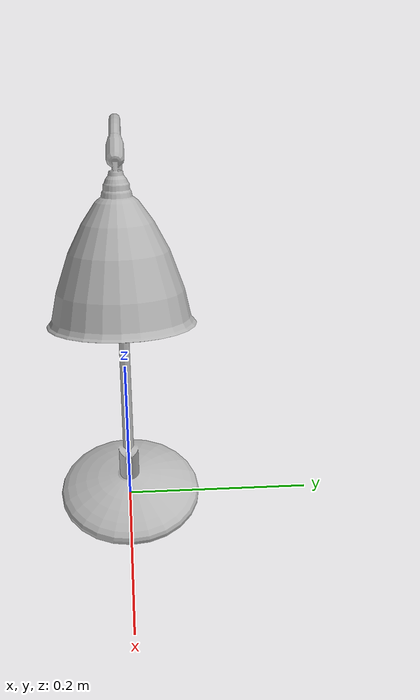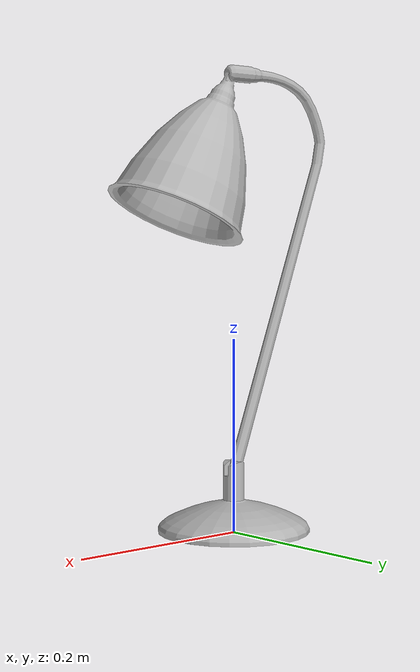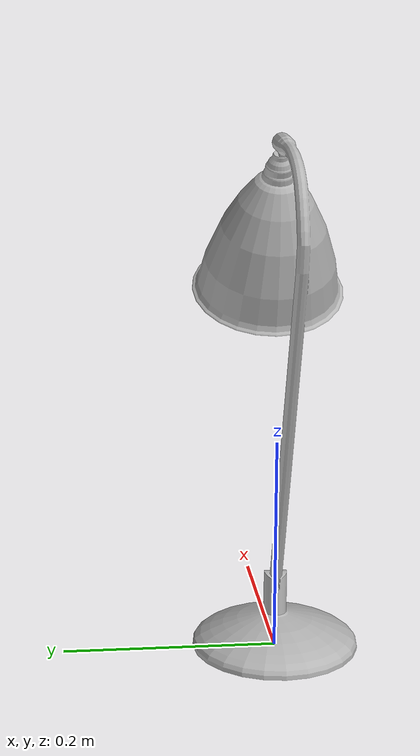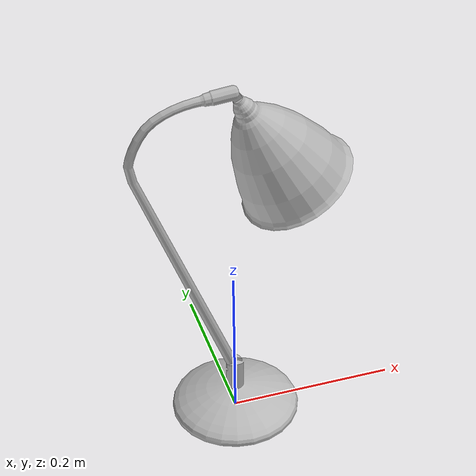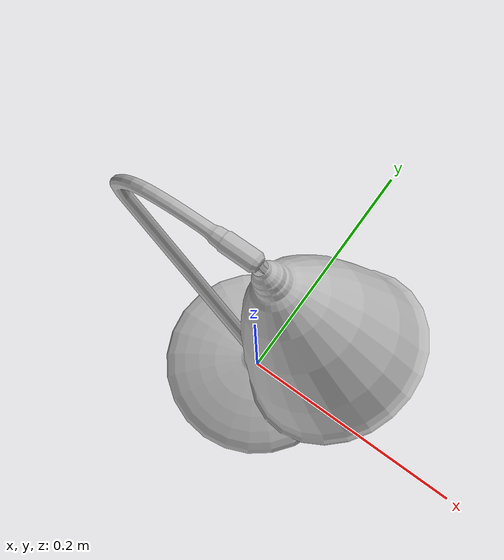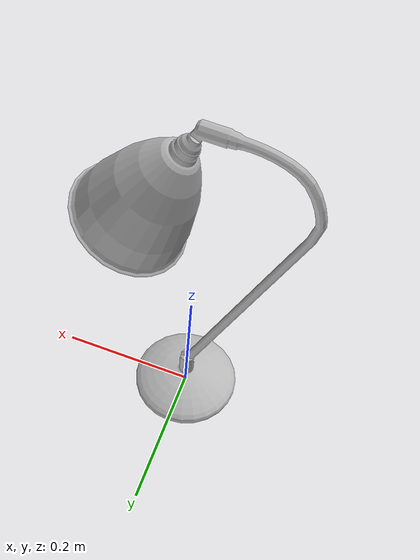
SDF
<?xml version='1.0'?>
<sdf version='1.4'>
  <model name='256'>
    <pose>0 0 0 0 0 0</pose>
    <static>true</static>
    <link name='link'>
      <collision name='collision'>
        <pose>0 0 0 0 0 0</pose>
        <geometry>
          <box>
            <size>0.268048 0.156245 2</size>
          </box>
        </geometry>
      </collision>
      <visual name='visual'>
        <pose>0 0 0 0 0 0</pose>
        <geometry>
          <mesh><uri>model://256/256.dae</uri></mesh>
        </geometry>
      </visual>
    </link>
  </model>
</sdf>
